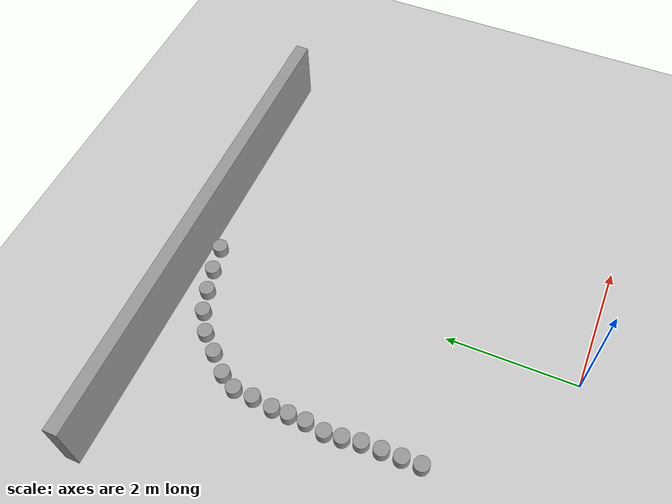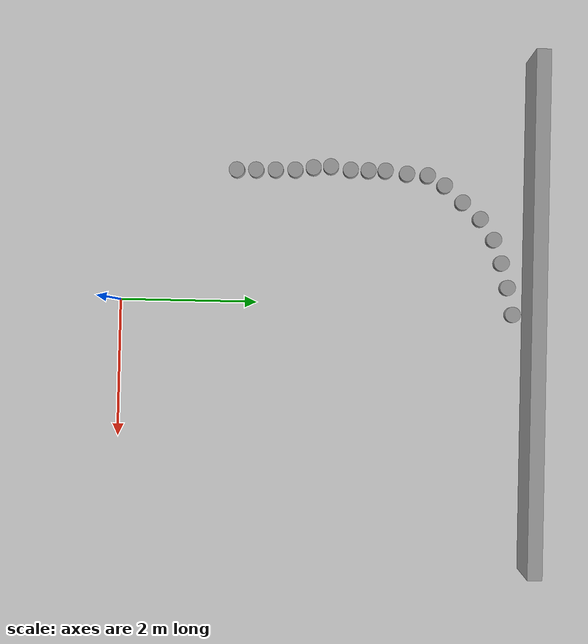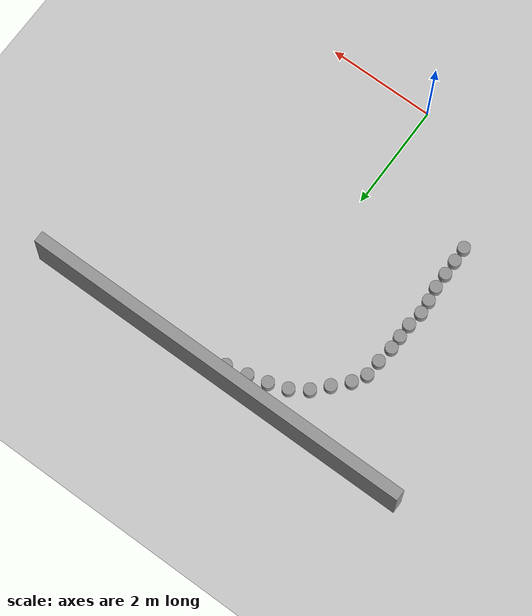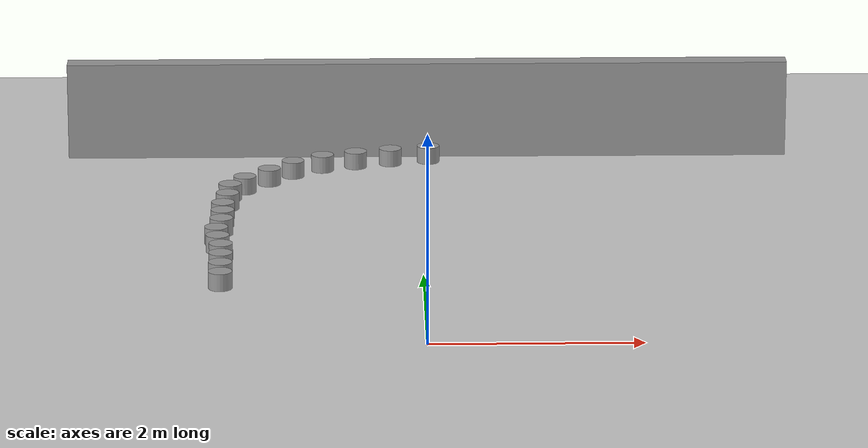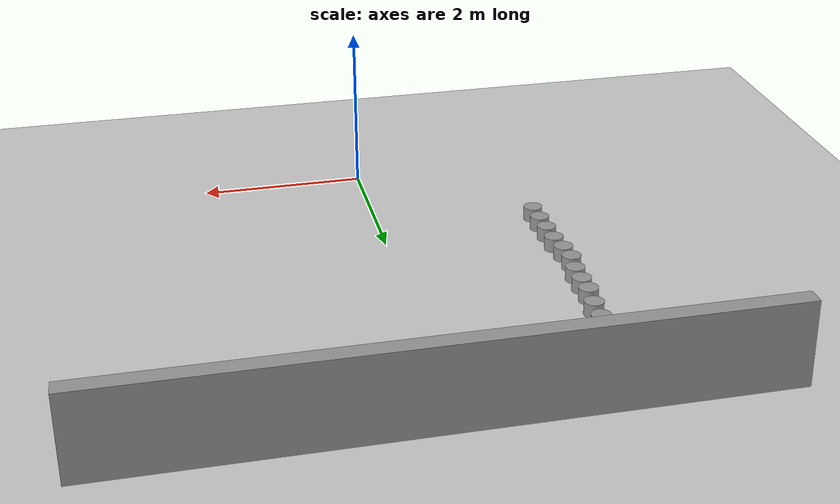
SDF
<sdf version="1.6">
 <world name="default">
  <model name="ground_plane">
   <static>1</static>
   <link name="link">
    <collision name="collision">
     <geometry><plane><normal>0 0 1</normal><size>100 100</size></plane></geometry>
     <surface>
      <contact><collide_bitmask>65535</collide_bitmask></contact>
      <friction><ode><mu>100</mu><mu2>50</mu2></ode></friction>
     </surface>
    </collision>
    <visual name="visual">
     <cast_shadows>0</cast_shadows>
     <geometry><plane><normal>0 0 1</normal><size>100 100</size></plane></geometry>
     <material>
      <script><uri>file://media/materials/scripts/gazebo.material</uri><name>Gazebo/Grey</name></script>
     </material>
    </visual>
   </link>
  </model>
  <model name="wall_2">
   <static>1</static>
   <pose>0.105381 6.01452 0.500023 -1e-05 0 0</pose>
   <link name="link">
    <inertial>
     <mass>1</mass>
     <inertia>
      <ixx>0.166667</ixx>
      <ixy>0</ixy>
      <ixz>0</ixz>
      <iyy>0.166667</iyy>
      <iyz>0</iyz>
      <izz>0.166667</izz>
     </inertia>
    </inertial>
    <collision name="collision"><geometry><box><size>7.44286 0.210664 1</size></box></geometry></collision>
    <visual name="visual">
     <geometry><box><size>7.44286 0.210664 1</size></box></geometry>
     <material>
      <script><name>Gazebo/Grey</name><uri>file://media/materials/scripts/gazebo.material</uri></script>
     </material>
    </visual>
   </link>
  </model>
  <model name="pillar">
   <link name="link_0">
    <inertial>
     <mass>0.0172437</mass>
     <inertia>
      <ixx>0.000207925</ixx>
      <ixy>0</ixy>
      <ixz>0</ixz>
      <iyy>0.000207925</iyy>
      <iyz>0</iyz>
      <izz>0.000114861</izz>
     </inertia>
    </inertial>
    <pose>2e-06 -0 0 0 -0 0</pose>
    <visual name="visual">
     <geometry><cylinder><radius>0.115422</radius><length>0.32362</length></cylinder></geometry>
     <material>
      <lighting>1</lighting>
      <script><uri>file://media/materials/scripts/gazebo.material</uri><name>Gazebo/Grey</name></script>
      <shader type="vertex"><normal_map>__default__</normal_map></shader>
     </material>
    </visual>
    <collision name="collision">
     <geometry><cylinder><radius>0.115422</radius><length>0.32362</length></cylinder></geometry>
     <surface>
      <friction>
       <ode><mu>1</mu><mu2>1</mu2><fdir1>0 0 0</fdir1><slip1>0</slip1><slip2>0</slip2></ode>
       <torsional>
        <coefficient>1</coefficient>
        <patch_radius>0</patch_radius>
        <surface_radius>0</surface_radius>
        <use_patch_radius>1</use_patch_radius>
        <ode><slip>0</slip></ode>
       </torsional>
      </friction>
      <bounce><restitution_coefficient>0</restitution_coefficient><threshold>1e+06</threshold></bounce>
      <contact>
       <collide_without_contact>0</collide_without_contact>
       <collide_without_contact_bitmask>1</collide_without_contact_bitmask>
       <collide_bitmask>1</collide_bitmask>
       <ode>
        <soft_cfm>0</soft_cfm>
        <soft_erp>0.2</soft_erp>
        <kp>1e+13</kp>
        <kd>1</kd>
        <max_vel>0.01</max_vel>
        <min_depth>0</min_depth>
       </ode>
       <bullet>
        <split_impulse>1</split_impulse>
        <split_impulse_penetration_threshold>-0.01</split_impulse_penetration_threshold>
        <soft_cfm>0</soft_cfm>
        <soft_erp>0.2</soft_erp>
        <kp>1e+13</kp>
        <kd>1</kd>
       </bullet>
      </contact>
     </surface>
    </collision>
   </link>
   <static>1</static>
   <pose>-2.01154 3.05582 0 0 -0 0</pose>
  </model>
  <model name="pillar_clone">
   <link name="link_0">
    <inertial>
     <mass>0.0172437</mass>
     <inertia>
      <ixx>0.000207925</ixx>
      <ixy>0</ixy>
      <ixz>0</ixz>
      <iyy>0.000207925</iyy>
      <iyz>0</iyz>
      <izz>0.000114861</izz>
     </inertia>
    </inertial>
    <pose>2e-06 -0 0 0 -0 0</pose>
    <visual name="visual">
     <geometry><cylinder><radius>0.115422</radius><length>0.32362</length></cylinder></geometry>
     <material>
      <lighting>1</lighting>
      <script><uri>file://media/materials/scripts/gazebo.material</uri><name>Gazebo/Grey</name></script>
      <shader type="vertex"><normal_map>__default__</normal_map></shader>
     </material>
    </visual>
    <collision name="collision">
     <geometry><cylinder><radius>0.115422</radius><length>0.32362</length></cylinder></geometry>
     <surface>
      <friction>
       <ode><mu>1</mu><mu2>1</mu2><fdir1>0 0 0</fdir1><slip1>0</slip1><slip2>0</slip2></ode>
       <torsional>
        <coefficient>1</coefficient>
        <patch_radius>0</patch_radius>
        <surface_radius>0</surface_radius>
        <use_patch_radius>1</use_patch_radius>
        <ode><slip>0</slip></ode>
       </torsional>
      </friction>
      <bounce><restitution_coefficient>0</restitution_coefficient><threshold>1e+06</threshold></bounce>
      <contact>
       <collide_without_contact>0</collide_without_contact>
       <collide_without_contact_bitmask>1</collide_without_contact_bitmask>
       <collide_bitmask>1</collide_bitmask>
       <ode>
        <soft_cfm>0</soft_cfm>
        <soft_erp>0.2</soft_erp>
        <kp>1e+13</kp>
        <kd>1</kd>
        <max_vel>0.01</max_vel>
        <min_depth>0</min_depth>
       </ode>
       <bullet>
        <split_impulse>1</split_impulse>
        <split_impulse_penetration_threshold>-0.01</split_impulse_penetration_threshold>
        <soft_cfm>0</soft_cfm>
        <soft_erp>0.2</soft_erp>
        <kp>1e+13</kp>
        <kd>1</kd>
       </bullet>
      </contact>
     </surface>
    </collision>
   </link>
   <static>1</static>
   <pose>-1.99112 2.80091 0 0 -0 0</pose>
  </model>
  <model name="pillar_clone_0">
   <link name="link_0">
    <inertial>
     <mass>0.0172437</mass>
     <inertia>
      <ixx>0.000207925</ixx>
      <ixy>0</ixy>
      <ixz>0</ixz>
      <iyy>0.000207925</iyy>
      <iyz>0</iyz>
      <izz>0.000114861</izz>
     </inertia>
    </inertial>
    <pose>2e-06 -0 0 0 -0 0</pose>
    <visual name="visual">
     <geometry><cylinder><radius>0.115422</radius><length>0.32362</length></cylinder></geometry>
     <material>
      <lighting>1</lighting>
      <script><uri>file://media/materials/scripts/gazebo.material</uri><name>Gazebo/Grey</name></script>
      <shader type="vertex"><normal_map>__default__</normal_map></shader>
     </material>
    </visual>
    <collision name="collision">
     <geometry><cylinder><radius>0.115422</radius><length>0.32362</length></cylinder></geometry>
     <surface>
      <friction>
       <ode><mu>1</mu><mu2>1</mu2><fdir1>0 0 0</fdir1><slip1>0</slip1><slip2>0</slip2></ode>
       <torsional>
        <coefficient>1</coefficient>
        <patch_radius>0</patch_radius>
        <surface_radius>0</surface_radius>
        <use_patch_radius>1</use_patch_radius>
        <ode><slip>0</slip></ode>
       </torsional>
      </friction>
      <bounce><restitution_coefficient>0</restitution_coefficient><threshold>1e+06</threshold></bounce>
      <contact>
       <collide_without_contact>0</collide_without_contact>
       <collide_without_contact_bitmask>1</collide_without_contact_bitmask>
       <collide_bitmask>1</collide_bitmask>
       <ode>
        <soft_cfm>0</soft_cfm>
        <soft_erp>0.2</soft_erp>
        <kp>1e+13</kp>
        <kd>1</kd>
        <max_vel>0.01</max_vel>
        <min_depth>0</min_depth>
       </ode>
       <bullet>
        <split_impulse>1</split_impulse>
        <split_impulse_penetration_threshold>-0.01</split_impulse_penetration_threshold>
        <soft_cfm>0</soft_cfm>
        <soft_erp>0.2</soft_erp>
        <kp>1e+13</kp>
        <kd>1</kd>
       </bullet>
      </contact>
     </surface>
    </collision>
   </link>
   <static>1</static>
   <pose>-1.95249 2.53371 0 0 -0 0</pose>
  </model>
  <model name="pillar_clone_1">
   <link name="link_0">
    <inertial>
     <mass>0.0172437</mass>
     <inertia>
      <ixx>0.000207925</ixx>
      <ixy>0</ixy>
      <ixz>0</ixz>
      <iyy>0.000207925</iyy>
      <iyz>0</iyz>
      <izz>0.000114861</izz>
     </inertia>
    </inertial>
    <pose>2e-06 -0 0 0 -0 0</pose>
    <visual name="visual">
     <geometry><cylinder><radius>0.115422</radius><length>0.32362</length></cylinder></geometry>
     <material>
      <lighting>1</lighting>
      <script><uri>file://media/materials/scripts/gazebo.material</uri><name>Gazebo/Grey</name></script>
      <shader type="vertex"><normal_map>__default__</normal_map></shader>
     </material>
    </visual>
    <collision name="collision">
     <geometry><cylinder><radius>0.115422</radius><length>0.32362</length></cylinder></geometry>
     <surface>
      <friction>
       <ode><mu>1</mu><mu2>1</mu2><fdir1>0 0 0</fdir1><slip1>0</slip1><slip2>0</slip2></ode>
       <torsional>
        <coefficient>1</coefficient>
        <patch_radius>0</patch_radius>
        <surface_radius>0</surface_radius>
        <use_patch_radius>1</use_patch_radius>
        <ode><slip>0</slip></ode>
       </torsional>
      </friction>
      <bounce><restitution_coefficient>0</restitution_coefficient><threshold>1e+06</threshold></bounce>
      <contact>
       <collide_without_contact>0</collide_without_contact>
       <collide_without_contact_bitmask>1</collide_without_contact_bitmask>
       <collide_bitmask>1</collide_bitmask>
       <ode>
        <soft_cfm>0</soft_cfm>
        <soft_erp>0.2</soft_erp>
        <kp>1e+13</kp>
        <kd>1</kd>
        <max_vel>0.01</max_vel>
        <min_depth>0</min_depth>
       </ode>
       <bullet>
        <split_impulse>1</split_impulse>
        <split_impulse_penetration_threshold>-0.01</split_impulse_penetration_threshold>
        <soft_cfm>0</soft_cfm>
        <soft_erp>0.2</soft_erp>
        <kp>1e+13</kp>
        <kd>1</kd>
       </bullet>
      </contact>
     </surface>
    </collision>
   </link>
   <static>1</static>
   <pose>-1.9471 2.24459 0 0 -0 0</pose>
  </model>
  <model name="pillar_clone_2">
   <link name="link_0">
    <inertial>
     <mass>0.0172437</mass>
     <inertia>
      <ixx>0.000207925</ixx>
      <ixy>0</ixy>
      <ixz>0</ixz>
      <iyy>0.000207925</iyy>
      <iyz>0</iyz>
      <izz>0.000114861</izz>
     </inertia>
    </inertial>
    <pose>2e-06 -0 0 0 -0 0</pose>
    <visual name="visual">
     <geometry><cylinder><radius>0.115422</radius><length>0.32362</length></cylinder></geometry>
     <material>
      <lighting>1</lighting>
      <script><uri>file://media/materials/scripts/gazebo.material</uri><name>Gazebo/Grey</name></script>
      <shader type="vertex"><normal_map>__default__</normal_map></shader>
     </material>
    </visual>
    <collision name="collision">
     <geometry><cylinder><radius>0.115422</radius><length>0.32362</length></cylinder></geometry>
     <surface>
      <friction>
       <ode><mu>1</mu><mu2>1</mu2><fdir1>0 0 0</fdir1><slip1>0</slip1><slip2>0</slip2></ode>
       <torsional>
        <coefficient>1</coefficient>
        <patch_radius>0</patch_radius>
        <surface_radius>0</surface_radius>
        <use_patch_radius>1</use_patch_radius>
        <ode><slip>0</slip></ode>
       </torsional>
      </friction>
      <bounce><restitution_coefficient>0</restitution_coefficient><threshold>1e+06</threshold></bounce>
      <contact>
       <collide_without_contact>0</collide_without_contact>
       <collide_without_contact_bitmask>1</collide_without_contact_bitmask>
       <collide_bitmask>1</collide_bitmask>
       <ode>
        <soft_cfm>0</soft_cfm>
        <soft_erp>0.2</soft_erp>
        <kp>1e+13</kp>
        <kd>1</kd>
        <max_vel>0.01</max_vel>
        <min_depth>0</min_depth>
       </ode>
       <bullet>
        <split_impulse>1</split_impulse>
        <split_impulse_penetration_threshold>-0.01</split_impulse_penetration_threshold>
        <soft_cfm>0</soft_cfm>
        <soft_erp>0.2</soft_erp>
        <kp>1e+13</kp>
        <kd>1</kd>
       </bullet>
      </contact>
     </surface>
    </collision>
   </link>
   <static>1</static>
   <pose>-1.94177 1.95842 0 0 -0 0</pose>
  </model>
  <model name="pillar_clone_3">
   <link name="link_0">
    <inertial>
     <mass>0.0172437</mass>
     <inertia>
      <ixx>0.000207925</ixx>
      <ixy>0</ixy>
      <ixz>0</ixz>
      <iyy>0.000207925</iyy>
      <iyz>0</iyz>
      <izz>0.000114861</izz>
     </inertia>
    </inertial>
    <pose>2e-06 -0 0 0 -0 0</pose>
    <visual name="visual">
     <geometry><cylinder><radius>0.115422</radius><length>0.32362</length></cylinder></geometry>
     <material>
      <lighting>1</lighting>
      <script><uri>file://media/materials/scripts/gazebo.material</uri><name>Gazebo/Grey</name></script>
      <shader type="vertex"><normal_map>__default__</normal_map></shader>
     </material>
    </visual>
    <collision name="collision">
     <geometry><cylinder><radius>0.115422</radius><length>0.32362</length></cylinder></geometry>
     <surface>
      <friction>
       <ode><mu>1</mu><mu2>1</mu2><fdir1>0 0 0</fdir1><slip1>0</slip1><slip2>0</slip2></ode>
       <torsional>
        <coefficient>1</coefficient>
        <patch_radius>0</patch_radius>
        <surface_radius>0</surface_radius>
        <use_patch_radius>1</use_patch_radius>
        <ode><slip>0</slip></ode>
       </torsional>
      </friction>
      <bounce><restitution_coefficient>0</restitution_coefficient><threshold>1e+06</threshold></bounce>
      <contact>
       <collide_without_contact>0</collide_without_contact>
       <collide_without_contact_bitmask>1</collide_without_contact_bitmask>
       <collide_bitmask>1</collide_bitmask>
       <ode>
        <soft_cfm>0</soft_cfm>
        <soft_erp>0.2</soft_erp>
        <kp>1e+13</kp>
        <kd>1</kd>
        <max_vel>0.01</max_vel>
        <min_depth>0</min_depth>
       </ode>
       <bullet>
        <split_impulse>1</split_impulse>
        <split_impulse_penetration_threshold>-0.01</split_impulse_penetration_threshold>
        <soft_cfm>0</soft_cfm>
        <soft_erp>0.2</soft_erp>
        <kp>1e+13</kp>
        <kd>1</kd>
       </bullet>
      </contact>
     </surface>
    </collision>
   </link>
   <static>1</static>
   <pose>-1.93622 1.67516 0 0 -0 0</pose>
  </model>
  <model name="pillar_clone_13">
   <link name="link_0">
    <inertial>
     <mass>0.0172437</mass>
     <inertia>
      <ixx>0.000207925</ixx>
      <ixy>0</ixy>
      <ixz>0</ixz>
      <iyy>0.000207925</iyy>
      <iyz>0</iyz>
      <izz>0.000114861</izz>
     </inertia>
    </inertial>
    <pose>2e-06 -0 0 0 -0 0</pose>
    <visual name="visual">
     <geometry><cylinder><radius>0.115422</radius><length>0.32362</length></cylinder></geometry>
     <material>
      <lighting>1</lighting>
      <script><uri>file://media/materials/scripts/gazebo.material</uri><name>Gazebo/Grey</name></script>
      <shader type="vertex"><normal_map>__default__</normal_map></shader>
     </material>
    </visual>
    <collision name="collision">
     <geometry><cylinder><radius>0.115422</radius><length>0.32362</length></cylinder></geometry>
     <surface>
      <friction>
       <ode><mu>1</mu><mu2>1</mu2><fdir1>0 0 0</fdir1><slip1>0</slip1><slip2>0</slip2></ode>
       <torsional>
        <coefficient>1</coefficient>
        <patch_radius>0</patch_radius>
        <surface_radius>0</surface_radius>
        <use_patch_radius>1</use_patch_radius>
        <ode><slip>0</slip></ode>
       </torsional>
      </friction>
      <bounce><restitution_coefficient>0</restitution_coefficient><threshold>1e+06</threshold></bounce>
      <contact>
       <collide_without_contact>0</collide_without_contact>
       <collide_without_contact_bitmask>1</collide_without_contact_bitmask>
       <collide_bitmask>1</collide_bitmask>
       <ode>
        <soft_cfm>0</soft_cfm>
        <soft_erp>0.2</soft_erp>
        <kp>1e+13</kp>
        <kd>1</kd>
        <max_vel>0.01</max_vel>
        <min_depth>0</min_depth>
       </ode>
       <bullet>
        <split_impulse>1</split_impulse>
        <split_impulse_penetration_threshold>-0.01</split_impulse_penetration_threshold>
        <soft_cfm>0</soft_cfm>
        <soft_erp>0.2</soft_erp>
        <kp>1e+13</kp>
        <kd>1</kd>
       </bullet>
      </contact>
     </surface>
    </collision>
   </link>
   <static>1</static>
   <pose>-1.96524 3.85851 0 0 -0 0</pose>
  </model>
  <model name="pillar_clone_14">
   <link name="link_0">
    <inertial>
     <mass>0.0172437</mass>
     <inertia>
      <ixx>0.000207925</ixx>
      <ixy>0</ixy>
      <ixz>0</ixz>
      <iyy>0.000207925</iyy>
      <iyz>0</iyz>
      <izz>0.000114861</izz>
     </inertia>
    </inertial>
    <pose>2e-06 -0 0 0 -0 0</pose>
    <visual name="visual">
     <geometry><cylinder><radius>0.115422</radius><length>0.32362</length></cylinder></geometry>
     <material>
      <lighting>1</lighting>
      <script><uri>file://media/materials/scripts/gazebo.material</uri><name>Gazebo/Grey</name></script>
      <shader type="vertex"><normal_map>__default__</normal_map></shader>
     </material>
    </visual>
    <collision name="collision">
     <geometry><cylinder><radius>0.115422</radius><length>0.32362</length></cylinder></geometry>
     <surface>
      <friction>
       <ode><mu>1</mu><mu2>1</mu2><fdir1>0 0 0</fdir1><slip1>0</slip1><slip2>0</slip2></ode>
       <torsional>
        <coefficient>1</coefficient>
        <patch_radius>0</patch_radius>
        <surface_radius>0</surface_radius>
        <use_patch_radius>1</use_patch_radius>
        <ode><slip>0</slip></ode>
       </torsional>
      </friction>
      <bounce><restitution_coefficient>0</restitution_coefficient><threshold>1e+06</threshold></bounce>
      <contact>
       <collide_without_contact>0</collide_without_contact>
       <collide_without_contact_bitmask>1</collide_without_contact_bitmask>
       <collide_bitmask>1</collide_bitmask>
       <ode>
        <soft_cfm>0</soft_cfm>
        <soft_erp>0.2</soft_erp>
        <kp>1e+13</kp>
        <kd>1</kd>
        <max_vel>0.01</max_vel>
        <min_depth>0</min_depth>
       </ode>
       <bullet>
        <split_impulse>1</split_impulse>
        <split_impulse_penetration_threshold>-0.01</split_impulse_penetration_threshold>
        <soft_cfm>0</soft_cfm>
        <soft_erp>0.2</soft_erp>
        <kp>1e+13</kp>
        <kd>1</kd>
       </bullet>
      </contact>
     </surface>
    </collision>
   </link>
   <static>1</static>
   <pose>-1.96342 3.6093 0 0 -0 0</pose>
  </model>
  <model name="pillar_clone_15">
   <link name="link_0">
    <inertial>
     <mass>0.0172437</mass>
     <inertia>
      <ixx>0.000207925</ixx>
      <ixy>0</ixy>
      <ixz>0</ixz>
      <iyy>0.000207925</iyy>
      <iyz>0</iyz>
      <izz>0.000114861</izz>
     </inertia>
    </inertial>
    <pose>2e-06 -0 0 0 -0 0</pose>
    <visual name="visual">
     <geometry><cylinder><radius>0.115422</radius><length>0.32362</length></cylinder></geometry>
     <material>
      <lighting>1</lighting>
      <script><uri>file://media/materials/scripts/gazebo.material</uri><name>Gazebo/Grey</name></script>
      <shader type="vertex"><normal_map>__default__</normal_map></shader>
     </material>
    </visual>
    <collision name="collision">
     <geometry><cylinder><radius>0.115422</radius><length>0.32362</length></cylinder></geometry>
     <surface>
      <friction>
       <ode><mu>1</mu><mu2>1</mu2><fdir1>0 0 0</fdir1><slip1>0</slip1><slip2>0</slip2></ode>
       <torsional>
        <coefficient>1</coefficient>
        <patch_radius>0</patch_radius>
        <surface_radius>0</surface_radius>
        <use_patch_radius>1</use_patch_radius>
        <ode><slip>0</slip></ode>
       </torsional>
      </friction>
      <bounce><restitution_coefficient>0</restitution_coefficient><threshold>1e+06</threshold></bounce>
      <contact>
       <collide_without_contact>0</collide_without_contact>
       <collide_without_contact_bitmask>1</collide_without_contact_bitmask>
       <collide_bitmask>1</collide_bitmask>
       <ode>
        <soft_cfm>0</soft_cfm>
        <soft_erp>0.2</soft_erp>
        <kp>1e+13</kp>
        <kd>1</kd>
        <max_vel>0.01</max_vel>
        <min_depth>0</min_depth>
       </ode>
       <bullet>
        <split_impulse>1</split_impulse>
        <split_impulse_penetration_threshold>-0.01</split_impulse_penetration_threshold>
        <soft_cfm>0</soft_cfm>
        <soft_erp>0.2</soft_erp>
        <kp>1e+13</kp>
        <kd>1</kd>
       </bullet>
      </contact>
     </surface>
    </collision>
   </link>
   <static>1</static>
   <pose>-1.96782 3.34684 0 0 -0 0</pose>
  </model>
  <model name="pillar_clone_36_clone_13">
   <link name="link_0">
    <inertial>
     <mass>0.0172437</mass>
     <inertia>
      <ixx>0.000207925</ixx>
      <ixy>0</ixy>
      <ixz>0</ixz>
      <iyy>0.000207925</iyy>
      <iyz>0</iyz>
      <izz>0.000114861</izz>
     </inertia>
    </inertial>
    <pose>2e-06 -0 0 0 -0 0</pose>
    <visual name="visual">
     <geometry><cylinder><radius>0.115422</radius><length>0.32362</length></cylinder></geometry>
     <material>
      <lighting>1</lighting>
      <script><uri>file://media/materials/scripts/gazebo.material</uri><name>Gazebo/Grey</name></script>
      <shader type="vertex"><normal_map>__default__</normal_map></shader>
     </material>
    </visual>
    <collision name="collision">
     <geometry><cylinder><radius>0.115422</radius><length>0.32362</length></cylinder></geometry>
     <surface>
      <friction>
       <ode><mu>1</mu><mu2>1</mu2><fdir1>0 0 0</fdir1><slip1>0</slip1><slip2>0</slip2></ode>
       <torsional>
        <coefficient>1</coefficient>
        <patch_radius>0</patch_radius>
        <surface_radius>0</surface_radius>
        <use_patch_radius>1</use_patch_radius>
        <ode><slip>0</slip></ode>
       </torsional>
      </friction>
      <bounce><restitution_coefficient>0</restitution_coefficient><threshold>1e+06</threshold></bounce>
      <contact>
       <collide_without_contact>0</collide_without_contact>
       <collide_without_contact_bitmask>1</collide_without_contact_bitmask>
       <collide_bitmask>1</collide_bitmask>
       <ode>
        <soft_cfm>0</soft_cfm>
        <soft_erp>0.2</soft_erp>
        <kp>1e+13</kp>
        <kd>1</kd>
        <max_vel>0.01</max_vel>
        <min_depth>0</min_depth>
       </ode>
       <bullet>
        <split_impulse>1</split_impulse>
        <split_impulse_penetration_threshold>-0.01</split_impulse_penetration_threshold>
        <soft_cfm>0</soft_cfm>
        <soft_erp>0.2</soft_erp>
        <kp>1e+13</kp>
        <kd>1</kd>
       </bullet>
      </contact>
     </surface>
    </collision>
   </link>
   <static>1</static>
   <pose>-1.92624 4.17436 0 0 -0 0</pose>
  </model>
  <model name="pillar_clone_36_clone_14">
   <link name="link_0">
    <inertial>
     <mass>0.0172437</mass>
     <inertia>
      <ixx>0.000207925</ixx>
      <ixy>0</ixy>
      <ixz>0</ixz>
      <iyy>0.000207925</iyy>
      <iyz>0</iyz>
      <izz>0.000114861</izz>
     </inertia>
    </inertial>
    <pose>2e-06 -0 0 0 -0 0</pose>
    <visual name="visual">
     <geometry><cylinder><radius>0.115422</radius><length>0.32362</length></cylinder></geometry>
     <material>
      <lighting>1</lighting>
      <script><uri>file://media/materials/scripts/gazebo.material</uri><name>Gazebo/Grey</name></script>
      <shader type="vertex"><normal_map>__default__</normal_map></shader>
     </material>
    </visual>
    <collision name="collision">
     <geometry><cylinder><radius>0.115422</radius><length>0.32362</length></cylinder></geometry>
     <surface>
      <friction>
       <ode><mu>1</mu><mu2>1</mu2><fdir1>0 0 0</fdir1><slip1>0</slip1><slip2>0</slip2></ode>
       <torsional>
        <coefficient>1</coefficient>
        <patch_radius>0</patch_radius>
        <surface_radius>0</surface_radius>
        <use_patch_radius>1</use_patch_radius>
        <ode><slip>0</slip></ode>
       </torsional>
      </friction>
      <bounce><restitution_coefficient>0</restitution_coefficient><threshold>1e+06</threshold></bounce>
      <contact>
       <collide_without_contact>0</collide_without_contact>
       <collide_without_contact_bitmask>1</collide_without_contact_bitmask>
       <collide_bitmask>1</collide_bitmask>
       <ode>
        <soft_cfm>0</soft_cfm>
        <soft_erp>0.2</soft_erp>
        <kp>1e+13</kp>
        <kd>1</kd>
        <max_vel>0.01</max_vel>
        <min_depth>0</min_depth>
       </ode>
       <bullet>
        <split_impulse>1</split_impulse>
        <split_impulse_penetration_threshold>-0.01</split_impulse_penetration_threshold>
        <soft_cfm>0</soft_cfm>
        <soft_erp>0.2</soft_erp>
        <kp>1e+13</kp>
        <kd>1</kd>
       </bullet>
      </contact>
     </surface>
    </collision>
   </link>
   <static>1</static>
   <pose>-1.90785 4.4788 0 0 -0 0</pose>
  </model>
  <model name="pillar_clone_36_clone_15">
   <link name="link_0">
    <inertial>
     <mass>0.0172437</mass>
     <inertia>
      <ixx>0.000207925</ixx>
      <ixy>0</ixy>
      <ixz>0</ixz>
      <iyy>0.000207925</iyy>
      <iyz>0</iyz>
      <izz>0.000114861</izz>
     </inertia>
    </inertial>
    <pose>2e-06 -0 0 0 -0 0</pose>
    <visual name="visual">
     <geometry><cylinder><radius>0.115422</radius><length>0.32362</length></cylinder></geometry>
     <material>
      <lighting>1</lighting>
      <script><uri>file://media/materials/scripts/gazebo.material</uri><name>Gazebo/Grey</name></script>
      <shader type="vertex"><normal_map>__default__</normal_map></shader>
     </material>
    </visual>
    <collision name="collision">
     <geometry><cylinder><radius>0.115422</radius><length>0.32362</length></cylinder></geometry>
     <surface>
      <friction>
       <ode><mu>1</mu><mu2>1</mu2><fdir1>0 0 0</fdir1><slip1>0</slip1><slip2>0</slip2></ode>
       <torsional>
        <coefficient>1</coefficient>
        <patch_radius>0</patch_radius>
        <surface_radius>0</surface_radius>
        <use_patch_radius>1</use_patch_radius>
        <ode><slip>0</slip></ode>
       </torsional>
      </friction>
      <bounce><restitution_coefficient>0</restitution_coefficient><threshold>1e+06</threshold></bounce>
      <contact>
       <collide_without_contact>0</collide_without_contact>
       <collide_without_contact_bitmask>1</collide_without_contact_bitmask>
       <collide_bitmask>1</collide_bitmask>
       <ode>
        <soft_cfm>0</soft_cfm>
        <soft_erp>0.2</soft_erp>
        <kp>1e+13</kp>
        <kd>1</kd>
        <max_vel>0.01</max_vel>
        <min_depth>0</min_depth>
       </ode>
       <bullet>
        <split_impulse>1</split_impulse>
        <split_impulse_penetration_threshold>-0.01</split_impulse_penetration_threshold>
        <soft_cfm>0</soft_cfm>
        <soft_erp>0.2</soft_erp>
        <kp>1e+13</kp>
        <kd>1</kd>
       </bullet>
      </contact>
     </surface>
    </collision>
   </link>
   <static>1</static>
   <pose>-1.52119 5 0 0 -0 0</pose>
  </model>
  <model name="pillar_clone_36_clone_16">
   <link name="link_0">
    <inertial>
     <mass>0.0172437</mass>
     <inertia>
      <ixx>0.000207925</ixx>
      <ixy>0</ixy>
      <ixz>0</ixz>
      <iyy>0.000207925</iyy>
      <iyz>0</iyz>
      <izz>0.000114861</izz>
     </inertia>
    </inertial>
    <pose>2e-06 -0 0 0 -0 0</pose>
    <visual name="visual">
     <geometry><cylinder><radius>0.115422</radius><length>0.32362</length></cylinder></geometry>
     <material>
      <lighting>1</lighting>
      <script><uri>file://media/materials/scripts/gazebo.material</uri><name>Gazebo/Grey</name></script>
      <shader type="vertex"><normal_map>__default__</normal_map></shader>
     </material>
    </visual>
    <collision name="collision">
     <geometry><cylinder><radius>0.115422</radius><length>0.32362</length></cylinder></geometry>
     <surface>
      <friction>
       <ode><mu>1</mu><mu2>1</mu2><fdir1>0 0 0</fdir1><slip1>0</slip1><slip2>0</slip2></ode>
       <torsional>
        <coefficient>1</coefficient>
        <patch_radius>0</patch_radius>
        <surface_radius>0</surface_radius>
        <use_patch_radius>1</use_patch_radius>
        <ode><slip>0</slip></ode>
       </torsional>
      </friction>
      <bounce><restitution_coefficient>0</restitution_coefficient><threshold>1e+06</threshold></bounce>
      <contact>
       <collide_without_contact>0</collide_without_contact>
       <collide_without_contact_bitmask>1</collide_without_contact_bitmask>
       <collide_bitmask>1</collide_bitmask>
       <ode>
        <soft_cfm>0</soft_cfm>
        <soft_erp>0.2</soft_erp>
        <kp>1e+13</kp>
        <kd>1</kd>
        <max_vel>0.01</max_vel>
        <min_depth>0</min_depth>
       </ode>
       <bullet>
        <split_impulse>1</split_impulse>
        <split_impulse_penetration_threshold>-0.01</split_impulse_penetration_threshold>
        <soft_cfm>0</soft_cfm>
        <soft_erp>0.2</soft_erp>
        <kp>1e+13</kp>
        <kd>1</kd>
       </bullet>
      </contact>
     </surface>
    </collision>
   </link>
   <static>1</static>
   <pose>-1.28242 5.26483 0 0 -0 0</pose>
  </model>
  <model name="pillar_clone_36_clone_17">
   <link name="link_0">
    <inertial>
     <mass>0.0172437</mass>
     <inertia>
      <ixx>0.000207925</ixx>
      <ixy>0</ixy>
      <ixz>0</ixz>
      <iyy>0.000207925</iyy>
      <iyz>0</iyz>
      <izz>0.000114861</izz>
     </inertia>
    </inertial>
    <pose>2e-06 -0 0 0 -0 0</pose>
    <visual name="visual">
     <geometry><cylinder><radius>0.115422</radius><length>0.32362</length></cylinder></geometry>
     <material>
      <lighting>1</lighting>
      <script><uri>file://media/materials/scripts/gazebo.material</uri><name>Gazebo/Grey</name></script>
      <shader type="vertex"><normal_map>__default__</normal_map></shader>
     </material>
    </visual>
    <collision name="collision">
     <geometry><cylinder><radius>0.115422</radius><length>0.32362</length></cylinder></geometry>
     <surface>
      <friction>
       <ode><mu>1</mu><mu2>1</mu2><fdir1>0 0 0</fdir1><slip1>0</slip1><slip2>0</slip2></ode>
       <torsional>
        <coefficient>1</coefficient>
        <patch_radius>0</patch_radius>
        <surface_radius>0</surface_radius>
        <use_patch_radius>1</use_patch_radius>
        <ode><slip>0</slip></ode>
       </torsional>
      </friction>
      <bounce><restitution_coefficient>0</restitution_coefficient><threshold>1e+06</threshold></bounce>
      <contact>
       <collide_without_contact>0</collide_without_contact>
       <collide_without_contact_bitmask>1</collide_without_contact_bitmask>
       <collide_bitmask>1</collide_bitmask>
       <ode>
        <soft_cfm>0</soft_cfm>
        <soft_erp>0.2</soft_erp>
        <kp>1e+13</kp>
        <kd>1</kd>
        <max_vel>0.01</max_vel>
        <min_depth>0</min_depth>
       </ode>
       <bullet>
        <split_impulse>1</split_impulse>
        <split_impulse_penetration_threshold>-0.01</split_impulse_penetration_threshold>
        <soft_cfm>0</soft_cfm>
        <soft_erp>0.2</soft_erp>
        <kp>1e+13</kp>
        <kd>1</kd>
       </bullet>
      </contact>
     </surface>
    </collision>
   </link>
   <static>1</static>
   <pose>-1.76496 4.73224 0 0 -0 0</pose>
  </model>
  <model name="pillar_clone_36_clone_18">
   <link name="link_0">
    <inertial>
     <mass>0.0172437</mass>
     <inertia>
      <ixx>0.000207925</ixx>
      <ixy>0</ixy>
      <ixz>0</ixz>
      <iyy>0.000207925</iyy>
      <iyz>0</iyz>
      <izz>0.000114861</izz>
     </inertia>
    </inertial>
    <pose>2e-06 -0 0 0 -0 0</pose>
    <visual name="visual">
     <geometry><cylinder><radius>0.115422</radius><length>0.32362</length></cylinder></geometry>
     <material>
      <lighting>1</lighting>
      <script><uri>file://media/materials/scripts/gazebo.material</uri><name>Gazebo/Grey</name></script>
      <shader type="vertex"><normal_map>__default__</normal_map></shader>
     </material>
    </visual>
    <collision name="collision">
     <geometry><cylinder><radius>0.115422</radius><length>0.32362</length></cylinder></geometry>
     <surface>
      <friction>
       <ode><mu>1</mu><mu2>1</mu2><fdir1>0 0 0</fdir1><slip1>0</slip1><slip2>0</slip2></ode>
       <torsional>
        <coefficient>1</coefficient>
        <patch_radius>0</patch_radius>
        <surface_radius>0</surface_radius>
        <use_patch_radius>1</use_patch_radius>
        <ode><slip>0</slip></ode>
       </torsional>
      </friction>
      <bounce><restitution_coefficient>0</restitution_coefficient><threshold>1e+06</threshold></bounce>
      <contact>
       <collide_without_contact>0</collide_without_contact>
       <collide_without_contact_bitmask>1</collide_without_contact_bitmask>
       <collide_bitmask>1</collide_bitmask>
       <ode>
        <soft_cfm>0</soft_cfm>
        <soft_erp>0.2</soft_erp>
        <kp>1e+13</kp>
        <kd>1</kd>
        <max_vel>0.01</max_vel>
        <min_depth>0</min_depth>
       </ode>
       <bullet>
        <split_impulse>1</split_impulse>
        <split_impulse_penetration_threshold>-0.01</split_impulse_penetration_threshold>
        <soft_cfm>0</soft_cfm>
        <soft_erp>0.2</soft_erp>
        <kp>1e+13</kp>
        <kd>1</kd>
       </bullet>
      </contact>
     </surface>
    </collision>
   </link>
   <static>1</static>
   <pose>-0.640386 5.58485 0 0 -0 0</pose>
  </model>
  <model name="pillar_clone_36_clone_19">
   <link name="link_0">
    <inertial>
     <mass>0.0172437</mass>
     <inertia>
      <ixx>0.000207925</ixx>
      <ixy>0</ixy>
      <ixz>0</ixz>
      <iyy>0.000207925</iyy>
      <iyz>0</iyz>
      <izz>0.000114861</izz>
     </inertia>
    </inertial>
    <pose>2e-06 -0 0 0 -0 0</pose>
    <visual name="visual">
     <geometry><cylinder><radius>0.115422</radius><length>0.32362</length></cylinder></geometry>
     <material>
      <lighting>1</lighting>
      <script><uri>file://media/materials/scripts/gazebo.material</uri><name>Gazebo/Grey</name></script>
      <shader type="vertex"><normal_map>__default__</normal_map></shader>
     </material>
    </visual>
    <collision name="collision">
     <geometry><cylinder><radius>0.115422</radius><length>0.32362</length></cylinder></geometry>
     <surface>
      <friction>
       <ode><mu>1</mu><mu2>1</mu2><fdir1>0 0 0</fdir1><slip1>0</slip1><slip2>0</slip2></ode>
       <torsional>
        <coefficient>1</coefficient>
        <patch_radius>0</patch_radius>
        <surface_radius>0</surface_radius>
        <use_patch_radius>1</use_patch_radius>
        <ode><slip>0</slip></ode>
       </torsional>
      </friction>
      <bounce><restitution_coefficient>0</restitution_coefficient><threshold>1e+06</threshold></bounce>
      <contact>
       <collide_without_contact>0</collide_without_contact>
       <collide_without_contact_bitmask>1</collide_without_contact_bitmask>
       <collide_bitmask>1</collide_bitmask>
       <ode>
        <soft_cfm>0</soft_cfm>
        <soft_erp>0.2</soft_erp>
        <kp>1e+13</kp>
        <kd>1</kd>
        <max_vel>0.01</max_vel>
        <min_depth>0</min_depth>
       </ode>
       <bullet>
        <split_impulse>1</split_impulse>
        <split_impulse_penetration_threshold>-0.01</split_impulse_penetration_threshold>
        <soft_cfm>0</soft_cfm>
        <soft_erp>0.2</soft_erp>
        <kp>1e+13</kp>
        <kd>1</kd>
       </bullet>
      </contact>
     </surface>
    </collision>
   </link>
   <static>1</static>
   <pose>-0.281741 5.68035 0 0 -0 0</pose>
  </model>
  <model name="pillar_clone_36_clone_20">
   <link name="link_0">
    <inertial>
     <mass>0.0172437</mass>
     <inertia>
      <ixx>0.000207925</ixx>
      <ixy>0</ixy>
      <ixz>0</ixz>
      <iyy>0.000207925</iyy>
      <iyz>0</iyz>
      <izz>0.000114861</izz>
     </inertia>
    </inertial>
    <pose>2e-06 -0 0 0 -0 0</pose>
    <visual name="visual">
     <geometry><cylinder><radius>0.115422</radius><length>0.32362</length></cylinder></geometry>
     <material>
      <lighting>1</lighting>
      <script><uri>file://media/materials/scripts/gazebo.material</uri><name>Gazebo/Grey</name></script>
      <shader type="vertex"><normal_map>__default__</normal_map></shader>
     </material>
    </visual>
    <collision name="collision">
     <geometry><cylinder><radius>0.115422</radius><length>0.32362</length></cylinder></geometry>
     <surface>
      <friction>
       <ode><mu>1</mu><mu2>1</mu2><fdir1>0 0 0</fdir1><slip1>0</slip1><slip2>0</slip2></ode>
       <torsional>
        <coefficient>1</coefficient>
        <patch_radius>0</patch_radius>
        <surface_radius>0</surface_radius>
        <use_patch_radius>1</use_patch_radius>
        <ode><slip>0</slip></ode>
       </torsional>
      </friction>
      <bounce><restitution_coefficient>0</restitution_coefficient><threshold>1e+06</threshold></bounce>
      <contact>
       <collide_without_contact>0</collide_without_contact>
       <collide_without_contact_bitmask>1</collide_without_contact_bitmask>
       <collide_bitmask>1</collide_bitmask>
       <ode>
        <soft_cfm>0</soft_cfm>
        <soft_erp>0.2</soft_erp>
        <kp>1e+13</kp>
        <kd>1</kd>
        <max_vel>0.01</max_vel>
        <min_depth>0</min_depth>
       </ode>
       <bullet>
        <split_impulse>1</split_impulse>
        <split_impulse_penetration_threshold>-0.01</split_impulse_penetration_threshold>
        <soft_cfm>0</soft_cfm>
        <soft_erp>0.2</soft_erp>
        <kp>1e+13</kp>
        <kd>1</kd>
       </bullet>
      </contact>
     </surface>
    </collision>
   </link>
   <static>1</static>
   <pose>0.110938 5.76163 0 0 -0 0</pose>
  </model>
  <model name="pillar_clone_36_clone_21">
   <link name="link_0">
    <inertial>
     <mass>0.0172437</mass>
     <inertia>
      <ixx>0.000207925</ixx>
      <ixy>0</ixy>
      <ixz>0</ixz>
      <iyy>0.000207925</iyy>
      <iyz>0</iyz>
      <izz>0.000114861</izz>
     </inertia>
    </inertial>
    <pose>2e-06 -0 0 0 -0 0</pose>
    <visual name="visual">
     <geometry><cylinder><radius>0.115422</radius><length>0.32362</length></cylinder></geometry>
     <material>
      <lighting>1</lighting>
      <script><uri>file://media/materials/scripts/gazebo.material</uri><name>Gazebo/Grey</name></script>
      <shader type="vertex"><normal_map>__default__</normal_map></shader>
     </material>
    </visual>
    <collision name="collision">
     <geometry><cylinder><radius>0.115422</radius><length>0.32362</length></cylinder></geometry>
     <surface>
      <friction>
       <ode><mu>1</mu><mu2>1</mu2><fdir1>0 0 0</fdir1><slip1>0</slip1><slip2>0</slip2></ode>
       <torsional>
        <coefficient>1</coefficient>
        <patch_radius>0</patch_radius>
        <surface_radius>0</surface_radius>
        <use_patch_radius>1</use_patch_radius>
        <ode><slip>0</slip></ode>
       </torsional>
      </friction>
      <bounce><restitution_coefficient>0</restitution_coefficient><threshold>1e+06</threshold></bounce>
      <contact>
       <collide_without_contact>0</collide_without_contact>
       <collide_without_contact_bitmask>1</collide_without_contact_bitmask>
       <collide_bitmask>1</collide_bitmask>
       <ode>
        <soft_cfm>0</soft_cfm>
        <soft_erp>0.2</soft_erp>
        <kp>1e+13</kp>
        <kd>1</kd>
        <max_vel>0.01</max_vel>
        <min_depth>0</min_depth>
       </ode>
       <bullet>
        <split_impulse>1</split_impulse>
        <split_impulse_penetration_threshold>-0.01</split_impulse_penetration_threshold>
        <soft_cfm>0</soft_cfm>
        <soft_erp>0.2</soft_erp>
        <kp>1e+13</kp>
        <kd>1</kd>
       </bullet>
      </contact>
     </surface>
    </collision>
   </link>
   <static>1</static>
   <pose>-0.981742 5.46708 0 0 -0 0</pose>
  </model>
 </world>
</sdf>
